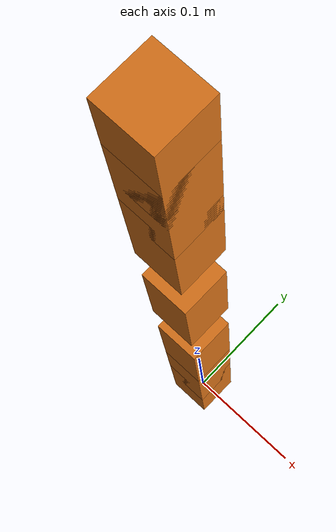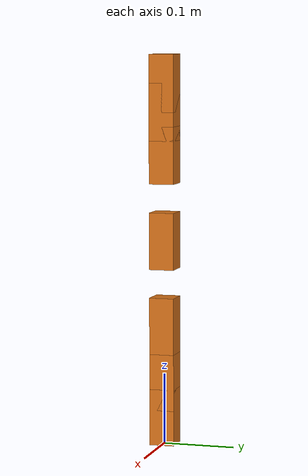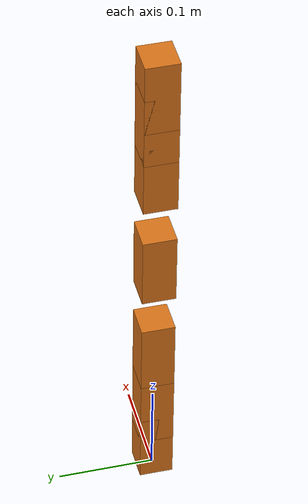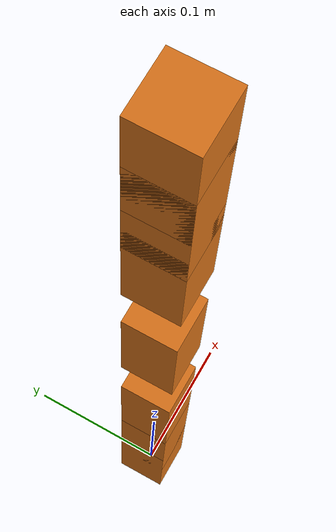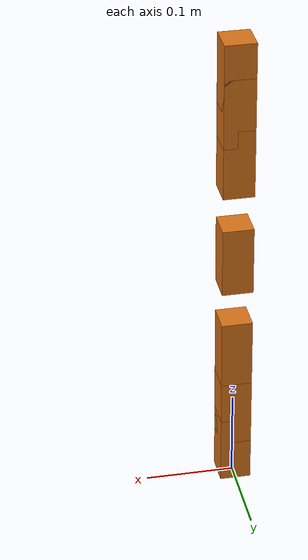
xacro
<?xml version="1.0"?>
<robot name="so101" xmlns:xacro="http://www.ros.org/wiki/xacro">
  <!-- Approximate primitives for integration tests, NOT measured CAD/collision geometry. -->
  <xacro:arg name="robot_config" default="/workspace/config/hardware/robot.yaml"/>
  <xacro:property name="robot_config" value="$(arg robot_config)"/>
  <xacro:property name="cfg" value="${xacro.load_yaml(robot_config)}"/>
  <xacro:macro name="body" params="name">
    <link name="${name}">
      <inertial><origin xyz="0 0 0.04"/><mass value="0.15"/><inertia ixx="0.001" ixy="0" ixz="0" iyy="0.001" iyz="0" izz="0.001"/></inertial>
      <visual><origin xyz="0 0 0.04"/><geometry><box size="0.035 0.035 0.08"/></geometry><material name="orange"><color rgba="0.85 0.45 0.1 1"/></material></visual>
      <collision><origin xyz="0 0 0.04"/><geometry><box size="0.035 0.035 0.08"/></geometry></collision>
    </link>
  </xacro:macro>
  <xacro:body name="base_link"/>
  <xacro:body name="shoulder_pan_link"/>
  <joint name="shoulder_pan" type="revolute"><parent link="base_link"/><child link="shoulder_pan_link"/><origin xyz="0 0 0.05"/><axis xyz="0 0 1"/><limit lower="${cfg['limits']['shoulder_pan']['min']}" upper="${cfg['limits']['shoulder_pan']['max']}" velocity="${cfg['limits']['shoulder_pan']['velocity']}" effort="3"/></joint>
  <xacro:body name="shoulder_lift_link"/>
  <joint name="shoulder_lift" type="revolute"><parent link="shoulder_pan_link"/><child link="shoulder_lift_link"/><origin xyz="0 0 0.08"/><axis xyz="0 1 0"/><limit lower="${cfg['limits']['shoulder_lift']['min']}" upper="${cfg['limits']['shoulder_lift']['max']}" velocity="${cfg['limits']['shoulder_lift']['velocity']}" effort="3"/></joint>
  <xacro:body name="elbow_link"/>
  <joint name="elbow_flex" type="revolute"><parent link="shoulder_lift_link"/><child link="elbow_link"/><origin xyz="0 0 0.12"/><axis xyz="0 1 0"/><limit lower="${cfg['limits']['elbow_flex']['min']}" upper="${cfg['limits']['elbow_flex']['max']}" velocity="${cfg['limits']['elbow_flex']['velocity']}" effort="3"/></joint>
  <xacro:body name="wrist_flex_link"/>
  <joint name="wrist_flex" type="revolute"><parent link="elbow_link"/><child link="wrist_flex_link"/><origin xyz="0 0 0.12"/><axis xyz="0 1 0"/><limit lower="${cfg['limits']['wrist_flex']['min']}" upper="${cfg['limits']['wrist_flex']['max']}" velocity="${cfg['limits']['wrist_flex']['velocity']}" effort="3"/></joint>
  <xacro:body name="wrist_roll_link"/>
  <joint name="wrist_roll" type="revolute"><parent link="wrist_flex_link"/><child link="wrist_roll_link"/><origin xyz="0 0 0.06"/><axis xyz="0 0 1"/><limit lower="${cfg['limits']['wrist_roll']['min']}" upper="${cfg['limits']['wrist_roll']['max']}" velocity="${cfg['limits']['wrist_roll']['velocity']}" effort="3"/></joint>
  <xacro:body name="gripper_link"/>
  <joint name="gripper" type="revolute"><parent link="wrist_roll_link"/><child link="gripper_link"/><origin xyz="0 0 0.04"/><axis xyz="0 1 0"/><limit lower="${cfg['limits']['gripper']['min']}" upper="${cfg['limits']['gripper']['max']}" velocity="${cfg['limits']['gripper']['velocity']}" effort="3"/></joint>
  <link name="camera_top_link"/><joint name="camera_top_fixed" type="fixed"><parent link="base_link"/><child link="camera_top_link"/><origin xyz="0.25 0 0.6"/></joint>
  <link name="camera_side_link"/><joint name="camera_side_fixed" type="fixed"><parent link="base_link"/><child link="camera_side_link"/><origin xyz="0 0.4 0.3"/></joint>
  <link name="camera_arm_link"/><joint name="camera_arm_fixed" type="fixed"><parent link="wrist_roll_link"/><child link="camera_arm_link"/><origin xyz="0.04 0 0.05"/></joint>
  <ros2_control name="SO101" type="system"><hardware><plugin>so101_hardware/TopicSystem</plugin><param name="timeout_s">${cfg['follower']['command_timeout_s']}</param></hardware>
    <joint name="shoulder_pan"><command_interface name="position"/><state_interface name="position"/></joint>
    <joint name="shoulder_lift"><command_interface name="position"/><state_interface name="position"/></joint>
    <joint name="elbow_flex"><command_interface name="position"/><state_interface name="position"/></joint>
    <joint name="wrist_flex"><command_interface name="position"/><state_interface name="position"/></joint>
    <joint name="wrist_roll"><command_interface name="position"/><state_interface name="position"/></joint>
    <joint name="gripper"><command_interface name="position"/><state_interface name="position"/></joint>
  </ros2_control>
</robot>
